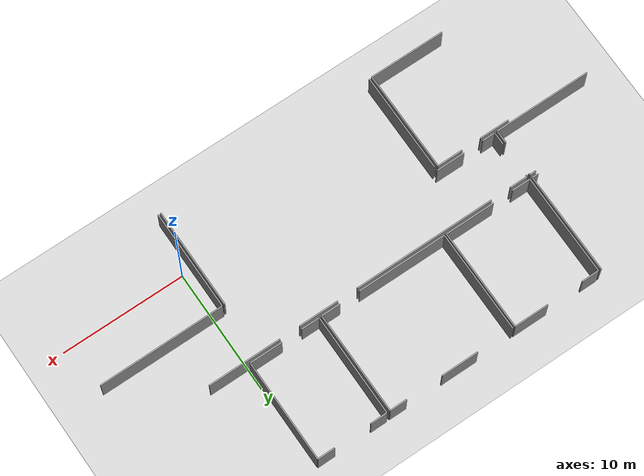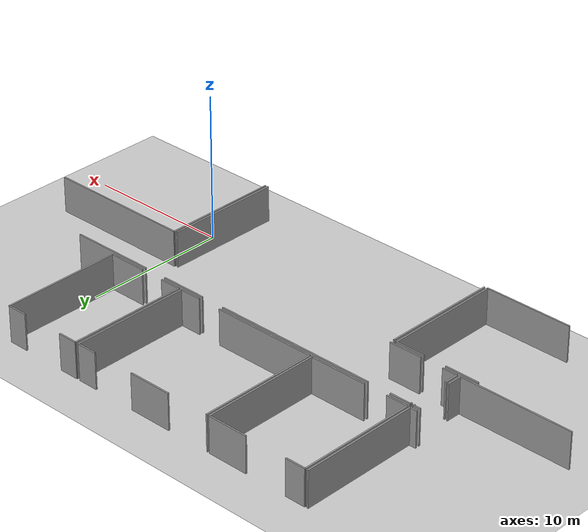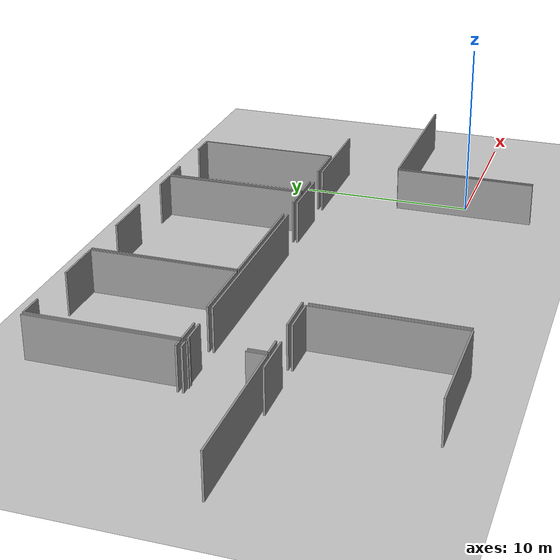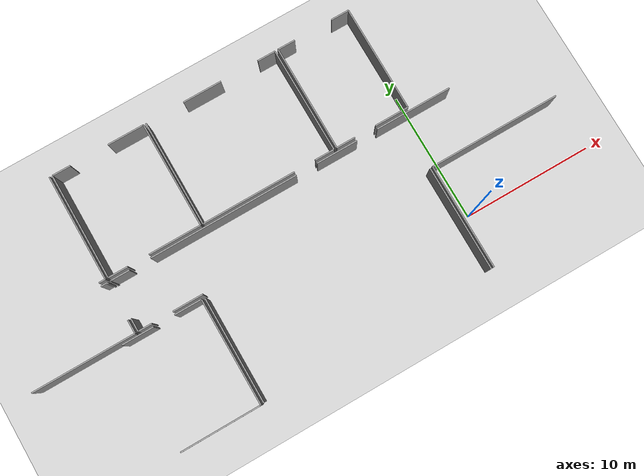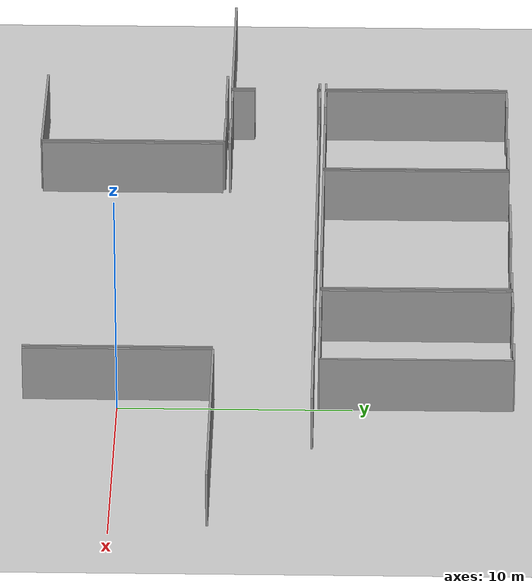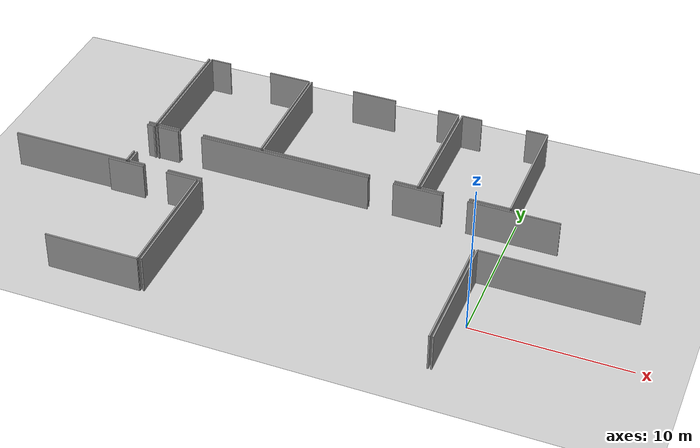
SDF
<sdf version="1.6">
 <world name="default">
  <model name="ground_plane">
   <static>1</static>
   <link name="link">
    <collision name="collision">
     <geometry><plane><normal>0 0 1</normal><size>100 100</size></plane></geometry>
     <surface><friction><ode><mu>100</mu><mu2>50</mu2></ode></friction></surface>
    </collision>
    <visual name="visual">
     <cast_shadows>0</cast_shadows>
     <geometry><plane><normal>0 0 1</normal><size>100 100</size></plane></geometry>
     <material>
      <script><uri>file://media/materials/scripts/gazebo.material</uri><name>Gazebo/Grey</name></script>
     </material>
    </visual>
   </link>
  </model>
  <model name="50041184">
   <static>1</static>
   <link name="Wall_0">
    <collision name="Wall_0_Collision">
     <geometry><box><size>0.124158155655 0.1 2.5</size></box></geometry>
     <pose>0.0620790778274 0 1.25 0 0 0</pose>
    </collision>
    <visual name="Wall_0_Visual">
     <pose>0.0620790778274 0 1.25 0 0 0</pose>
     <geometry><box><size>0.124158155655 0.1 2.5</size></box></geometry>
     <material>
      <script><uri>file://media/materials/scripts/gazebo.material</uri><name>Gazebo/Grey</name></script>
      <ambient>1 1 1 1</ambient>
     </material>
    </visual>
    <pose>47.5227528072 -8.49251940765 0 0 0 -1.57079632679</pose>
   </link>
   <link name="Wall_1">
    <collision name="Wall_1_Collision">
     <geometry><box><size>1.04633079643 0.1 2.5</size></box></geometry>
     <pose>0.523165398214 0 1.25 0 0 0</pose>
    </collision>
    <visual name="Wall_1_Visual">
     <pose>0.523165398214 0 1.25 0 0 0</pose>
     <geometry><box><size>1.04633079643 0.1 2.5</size></box></geometry>
     <material>
      <script><uri>file://media/materials/scripts/gazebo.material</uri><name>Gazebo/Grey</name></script>
      <ambient>1 1 1 1</ambient>
     </material>
    </visual>
    <pose>47.5227528072 -11.4282631188 0 0 0 -1.57079632679</pose>
   </link>
   <link name="Wall_2">
    <collision name="Wall_2_Collision">
     <geometry><box><size>7.89077129128 0.1 2.5</size></box></geometry>
     <pose>3.94538564564 0 1.25 0 0 0</pose>
    </collision>
    <visual name="Wall_2_Visual">
     <pose>3.94538564564 0 1.25 0 0 0</pose>
     <geometry><box><size>7.89077129128 0.1 2.5</size></box></geometry>
     <material>
      <script><uri>file://media/materials/scripts/gazebo.material</uri><name>Gazebo/Grey</name></script>
      <ambient>1 1 1 1</ambient>
     </material>
    </visual>
    <pose>47.5227528072 -12.4745939152 0 0 0 3.14159265359</pose>
   </link>
   <link name="Wall_14">
    <collision name="Wall_14_Collision">
     <geometry><box><size>0.503983841448 0.1 2.5</size></box></geometry>
     <pose>0.251991920724 0 1.25 0 0 0</pose>
    </collision>
    <visual name="Wall_14_Visual">
     <pose>0.251991920724 0 1.25 0 0 0</pose>
     <geometry><box><size>0.503983841448 0.1 2.5</size></box></geometry>
     <material>
      <script><uri>file://media/materials/scripts/gazebo.material</uri><name>Gazebo/Grey</name></script>
      <ambient>1 1 1 1</ambient>
     </material>
    </visual>
    <pose>47.0190109241 -8.50813439041 0 0 0 0.0309880611951</pose>
   </link>
   <link name="Wall_39">
    <collision name="Wall_39_Collision">
     <geometry><box><size>0.499298595286 0.1 2.5</size></box></geometry>
     <pose>0.249649297643 0 1.25 0 0 0</pose>
    </collision>
    <visual name="Wall_39_Visual">
     <pose>0.249649297643 0 1.25 0 0 0</pose>
     <geometry><box><size>0.499298595286 0.1 2.5</size></box></geometry>
     <material>
      <script><uri>file://media/materials/scripts/gazebo.material</uri><name>Gazebo/Grey</name></script>
      <ambient>1 1 1 1</ambient>
     </material>
    </visual>
    <pose>47.5161513511 -8.2216058042 0 0 0 3.14159265359</pose>
   </link>
   <link name="Wall_44">
    <collision name="Wall_44_Collision">
     <geometry><box><size>8.202944471 0.1 2.5</size></box></geometry>
     <pose>4.1014722355 0 1.25 0 0 0</pose>
    </collision>
    <visual name="Wall_44_Visual">
     <pose>4.1014722355 0 1.25 0 0 0</pose>
     <geometry><box><size>8.202944471 0.1 2.5</size></box></geometry>
     <material>
      <script><uri>file://media/materials/scripts/gazebo.material</uri><name>Gazebo/Grey</name></script>
      <ambient>1 1 1 1</ambient>
     </material>
    </visual>
    <pose>47.5133584273 -0.018661808672 0 0 0 -1.57045584859</pose>
   </link>
   <link name="Wall_58">
    <collision name="Wall_58_Collision">
     <geometry><box><size>2.33361474156 0.1 2.5</size></box></geometry>
     <pose>1.16680737078 0 1.25 0 0 0</pose>
    </collision>
    <visual name="Wall_58_Visual">
     <pose>1.16680737078 0 1.25 0 0 0</pose>
     <geometry><box><size>2.33361474156 0.1 2.5</size></box></geometry>
     <material>
      <script><uri>file://media/materials/scripts/gazebo.material</uri><name>Gazebo/Grey</name></script>
      <ambient>1 1 1 1</ambient>
     </material>
    </visual>
    <pose>52.7582153217 -12.4580902749 0 0 0 3.14159265359</pose>
   </link>
   <link name="Wall_59">
    <collision name="Wall_59_Collision">
     <geometry><box><size>1.060041513 0.1 2.5</size></box></geometry>
     <pose>0.530020756501 0 1.25 0 0 0</pose>
    </collision>
    <visual name="Wall_59_Visual">
     <pose>0.530020756501 0 1.25 0 0 0</pose>
     <geometry><box><size>1.060041513 0.1 2.5</size></box></geometry>
     <material>
      <script><uri>file://media/materials/scripts/gazebo.material</uri><name>Gazebo/Grey</name></script>
      <ambient>1 1 1 1</ambient>
     </material>
    </visual>
    <pose>48.8099098013 -12.4580902749 0 0 0 3.14159265359</pose>
   </link>
   <link name="Wall_60">
    <collision name="Wall_60_Collision">
     <geometry><box><size>1.00608730426 0.1 2.5</size></box></geometry>
     <pose>0.503043652129 0 1.25 0 0 0</pose>
    </collision>
    <visual name="Wall_60_Visual">
     <pose>0.503043652129 0 1.25 0 0 0</pose>
     <geometry><box><size>1.00608730426 0.1 2.5</size></box></geometry>
     <material>
      <script><uri>file://media/materials/scripts/gazebo.material</uri><name>Gazebo/Grey</name></script>
      <ambient>1 1 1 1</ambient>
     </material>
    </visual>
    <pose>47.7498682883 -12.4580902749 0 0 0 1.57079632679</pose>
   </link>
   <link name="Wall_61">
    <collision name="Wall_61_Collision">
     <geometry><box><size>0.12517376429 0.1 2.5</size></box></geometry>
     <pose>0.062586882145 0 1.25 0 0 0</pose>
    </collision>
    <visual name="Wall_61_Visual">
     <pose>0.062586882145 0 1.25 0 0 0</pose>
     <geometry><box><size>0.12517376429 0.1 2.5</size></box></geometry>
     <material>
      <script><uri>file://media/materials/scripts/gazebo.material</uri><name>Gazebo/Grey</name></script>
      <ambient>1 1 1 1</ambient>
     </material>
    </visual>
    <pose>47.7498682883 -8.62226341079 0 0 0 1.57079632679</pose>
   </link>
   <link name="Wall_62">
    <collision name="Wall_62_Collision">
     <geometry><box><size>1.48583543332 0.1 2.5</size></box></geometry>
     <pose>0.742917716658 0 1.25 0 0 0</pose>
    </collision>
    <visual name="Wall_62_Visual">
     <pose>0.742917716658 0 1.25 0 0 0</pose>
     <geometry><box><size>1.48583543332 0.1 2.5</size></box></geometry>
     <material>
      <script><uri>file://media/materials/scripts/gazebo.material</uri><name>Gazebo/Grey</name></script>
      <ambient>1 1 1 1</ambient>
     </material>
    </visual>
    <pose>47.7498682883 -8.4970896465 0 0 0 0.0</pose>
   </link>
   <link name="Wall_63">
    <collision name="Wall_63_Collision">
     <geometry><box><size>11.4763775779 0.1 2.5</size></box></geometry>
     <pose>5.73818878895 0 1.25 0 0 0</pose>
    </collision>
    <visual name="Wall_63_Visual">
     <pose>5.73818878895 0 1.25 0 0 0</pose>
     <geometry><box><size>11.4763775779 0.1 2.5</size></box></geometry>
     <material>
      <script><uri>file://media/materials/scripts/gazebo.material</uri><name>Gazebo/Grey</name></script>
      <ambient>1 1 1 1</ambient>
     </material>
    </visual>
    <pose>50.8761655696 -8.4970896465 0 0 0 0.0</pose>
   </link>
   <link name="Wall_64">
    <collision name="Wall_64_Collision">
     <geometry><box><size>3.21249706426 0.1 2.5</size></box></geometry>
     <pose>1.60624853213 0 1.25 0 0 0</pose>
    </collision>
    <visual name="Wall_64_Visual">
     <pose>1.60624853213 0 1.25 0 0 0</pose>
     <geometry><box><size>3.21249706426 0.1 2.5</size></box></geometry>
     <material>
      <script><uri>file://media/materials/scripts/gazebo.material</uri><name>Gazebo/Grey</name></script>
      <ambient>1 1 1 1</ambient>
     </material>
    </visual>
    <pose>64.0083660761 -8.4970896465 0 0 0 0.0</pose>
   </link>
   <link name="Wall_65">
    <collision name="Wall_65_Collision">
     <geometry><box><size>5.88748325833 0.1 2.5</size></box></geometry>
     <pose>2.94374162916 0 1.25 0 0 0</pose>
    </collision>
    <visual name="Wall_65_Visual">
     <pose>2.94374162916 0 1.25 0 0 0</pose>
     <geometry><box><size>5.88748325833 0.1 2.5</size></box></geometry>
     <material>
      <script><uri>file://media/materials/scripts/gazebo.material</uri><name>Gazebo/Grey</name></script>
      <ambient>1 1 1 1</ambient>
     </material>
    </visual>
    <pose>68.8578973093 -8.4970896465 0 0 0 0.0</pose>
   </link>
   <link name="Wall_75">
    <collision name="Wall_75_Collision">
     <geometry><box><size>4.04136066167 0.1 2.5</size></box></geometry>
     <pose>2.02068033083 0 1.25 0 0 0</pose>
    </collision>
    <visual name="Wall_75_Visual">
     <pose>2.02068033083 0 1.25 0 0 0</pose>
     <geometry><box><size>4.04136066167 0.1 2.5</size></box></geometry>
     <material>
      <script><uri>file://media/materials/scripts/gazebo.material</uri><name>Gazebo/Grey</name></script>
      <ambient>1 1 1 1</ambient>
     </material>
    </visual>
    <pose>54.9351724313 -8.23163493948 0 0 0 3.14159265359</pose>
   </link>
   <link name="Wall_76">
    <collision name="Wall_76_Collision">
     <geometry><box><size>1.51693844777 0.1 2.5</size></box></geometry>
     <pose>0.758469223885 0 1.25 0 0 0</pose>
    </collision>
    <visual name="Wall_76_Visual">
     <pose>0.758469223885 0 1.25 0 0 0</pose>
     <geometry><box><size>1.51693844777 0.1 2.5</size></box></geometry>
     <material>
      <script><uri>file://media/materials/scripts/gazebo.material</uri><name>Gazebo/Grey</name></script>
      <ambient>1 1 1 1</ambient>
     </material>
    </visual>
    <pose>49.2414165201 -8.23163493948 0 0 0 3.14159265359</pose>
   </link>
   <link name="Wall_77">
    <collision name="Wall_77_Collision">
     <geometry><box><size>8.19608863724 0.1 2.5</size></box></geometry>
     <pose>4.09804431862 0 1.25 0 0 0</pose>
    </collision>
    <visual name="Wall_77_Visual">
     <pose>4.09804431862 0 1.25 0 0 0</pose>
     <geometry><box><size>8.19608863724 0.1 2.5</size></box></geometry>
     <material>
      <script><uri>file://media/materials/scripts/gazebo.material</uri><name>Gazebo/Grey</name></script>
      <ambient>1 1 1 1</ambient>
     </material>
    </visual>
    <pose>47.7244780724 -8.23163493948 0 0 0 1.57079632679</pose>
   </link>
   <link name="Wall_78">
    <collision name="Wall_78_Collision">
     <geometry><box><size>1.40661795977 0.1 2.5</size></box></geometry>
     <pose>0.703308979885 0 1.25 0 0 0</pose>
    </collision>
    <visual name="Wall_78_Visual">
     <pose>0.703308979885 0 1.25 0 0 0</pose>
     <geometry><box><size>1.40661795977 0.1 2.5</size></box></geometry>
     <material>
      <script><uri>file://media/materials/scripts/gazebo.material</uri><name>Gazebo/Grey</name></script>
      <ambient>1 1 1 1</ambient>
     </material>
    </visual>
    <pose>47.7244780724 -0.0355463022324 0 0 0 0.0</pose>
   </link>
   <link name="Wall_79">
    <collision name="Wall_79_Collision">
     <geometry><box><size>2.82059908214 0.1 2.5</size></box></geometry>
     <pose>1.41029954107 0 1.25 0 0 0</pose>
    </collision>
    <visual name="Wall_79_Visual">
     <pose>1.41029954107 0 1.25 0 0 0</pose>
     <geometry><box><size>2.82059908214 0.1 2.5</size></box></geometry>
     <material>
      <script><uri>file://media/materials/scripts/gazebo.material</uri><name>Gazebo/Grey</name></script>
      <ambient>1 1 1 1</ambient>
     </material>
    </visual>
    <pose>52.0900717908 -0.0355463022324 0 0 0 0.0</pose>
   </link>
   <link name="Wall_80">
    <collision name="Wall_80_Collision">
     <geometry><box><size>8.1961252599 0.1 2.5</size></box></geometry>
     <pose>4.09806262995 0 1.25 0 0 0</pose>
    </collision>
    <visual name="Wall_80_Visual">
     <pose>4.09806262995 0 1.25 0 0 0</pose>
     <geometry><box><size>8.1961252599 0.1 2.5</size></box></geometry>
     <material>
      <script><uri>file://media/materials/scripts/gazebo.material</uri><name>Gazebo/Grey</name></script>
      <ambient>1 1 1 1</ambient>
     </material>
    </visual>
    <pose>54.910670873 -0.0355463022324 0 0 0 -1.56780691484</pose>
   </link>
   <link name="Wall_81">
    <collision name="Wall_81_Collision">
     <geometry><box><size>1.51389162186 0.1 2.5</size></box></geometry>
     <pose>0.756945810932 0 1.25 0 0 0</pose>
    </collision>
    <visual name="Wall_81_Visual">
     <pose>0.756945810932 0 1.25 0 0 0</pose>
     <geometry><box><size>1.51389162186 0.1 2.5</size></box></geometry>
     <material>
      <script><uri>file://media/materials/scripts/gazebo.material</uri><name>Gazebo/Grey</name></script>
      <ambient>1 1 1 1</ambient>
     </material>
    </visual>
    <pose>65.5263201325 -8.24039456395 0 0 0 3.14159265359</pose>
   </link>
   <link name="Wall_82">
    <collision name="Wall_82_Collision">
     <geometry><box><size>7.24751017196 0.1 2.5</size></box></geometry>
     <pose>3.62375508598 0 1.25 0 0 0</pose>
    </collision>
    <visual name="Wall_82_Visual">
     <pose>3.62375508598 0 1.25 0 0 0</pose>
     <geometry><box><size>7.24751017196 0.1 2.5</size></box></geometry>
     <material>
      <script><uri>file://media/materials/scripts/gazebo.material</uri><name>Gazebo/Grey</name></script>
      <ambient>1 1 1 1</ambient>
     </material>
    </visual>
    <pose>62.3554630223 -8.24039456395 0 0 0 3.14159265359</pose>
   </link>
   <link name="Wall_83">
    <collision name="Wall_83_Collision">
     <geometry><box><size>8.23315835243 0.1 2.5</size></box></geometry>
     <pose>4.11657917621 0 1.25 0 0 0</pose>
    </collision>
    <visual name="Wall_83_Visual">
     <pose>4.11657917621 0 1.25 0 0 0</pose>
     <geometry><box><size>8.23315835243 0.1 2.5</size></box></geometry>
     <material>
      <script><uri>file://media/materials/scripts/gazebo.material</uri><name>Gazebo/Grey</name></script>
      <ambient>1 1 1 1</ambient>
     </material>
    </visual>
    <pose>55.1079528504 -8.24039456395 0 0 0 1.57079632679</pose>
   </link>
   <link name="Wall_84">
    <collision name="Wall_84_Collision">
     <geometry><box><size>3.0131838696 0.1 2.5</size></box></geometry>
     <pose>1.5065919348 0 1.25 0 0 0</pose>
    </collision>
    <visual name="Wall_84_Visual">
     <pose>1.5065919348 0 1.25 0 0 0</pose>
     <geometry><box><size>3.0131838696 0.1 2.5</size></box></geometry>
     <material>
      <script><uri>file://media/materials/scripts/gazebo.material</uri><name>Gazebo/Grey</name></script>
      <ambient>1 1 1 1</ambient>
     </material>
    </visual>
    <pose>58.1005706451 -0.00723621152589 0 0 0 0.0</pose>
   </link>
   <link name="Wall_85">
    <collision name="Wall_85_Collision">
     <geometry><box><size>1.39417675399 0.1 2.5</size></box></geometry>
     <pose>0.697088376994 0 1.25 0 0 0</pose>
    </collision>
    <visual name="Wall_85_Visual">
     <pose>0.697088376994 0 1.25 0 0 0</pose>
     <geometry><box><size>1.39417675399 0.1 2.5</size></box></geometry>
     <material>
      <script><uri>file://media/materials/scripts/gazebo.material</uri><name>Gazebo/Grey</name></script>
      <ambient>1 1 1 1</ambient>
     </material>
    </visual>
    <pose>64.0939311036 -0.00723621152589 0 0 0 0.0</pose>
   </link>
   <link name="Wall_86">
    <collision name="Wall_86_Collision">
     <geometry><box><size>8.23324702861 0.1 2.5</size></box></geometry>
     <pose>4.11662351431 0 1.25 0 0 0</pose>
    </collision>
    <visual name="Wall_86_Visual">
     <pose>4.11662351431 0 1.25 0 0 0</pose>
     <geometry><box><size>8.23324702861 0.1 2.5</size></box></geometry>
     <material>
      <script><uri>file://media/materials/scripts/gazebo.material</uri><name>Gazebo/Grey</name></script>
      <ambient>1 1 1 1</ambient>
     </material>
    </visual>
    <pose>65.4881078576 -0.00723621152589 0 0 0 -1.56615509449</pose>
   </link>
   <link name="Wall_93">
    <collision name="Wall_93_Collision">
     <geometry><box><size>2.63029941412 0.1 2.5</size></box></geometry>
     <pose>1.31514970706 0 1.25 0 0 0</pose>
    </collision>
    <visual name="Wall_93_Visual">
     <pose>1.31514970706 0 1.25 0 0 0</pose>
     <geometry><box><size>2.63029941412 0.1 2.5</size></box></geometry>
     <material>
      <script><uri>file://media/materials/scripts/gazebo.material</uri><name>Gazebo/Grey</name></script>
      <ambient>1 1 1 1</ambient>
     </material>
    </visual>
    <pose>71.513206086 -8.23163493948 0 0 0 3.14159265359</pose>
   </link>
   <link name="Wall_94">
    <collision name="Wall_94_Collision">
     <geometry><box><size>1.4723786189 0.1 2.5</size></box></geometry>
     <pose>0.73618930945 0 1.25 0 0 0</pose>
    </collision>
    <visual name="Wall_94_Visual">
     <pose>0.73618930945 0 1.25 0 0 0</pose>
     <geometry><box><size>1.4723786189 0.1 2.5</size></box></geometry>
     <material>
      <script><uri>file://media/materials/scripts/gazebo.material</uri><name>Gazebo/Grey</name></script>
      <ambient>1 1 1 1</ambient>
     </material>
    </visual>
    <pose>67.2208631404 -8.23163493948 0 0 0 3.14159265359</pose>
   </link>
   <link name="Wall_95">
    <collision name="Wall_95_Collision">
     <geometry><box><size>8.23163493948 0.1 2.5</size></box></geometry>
     <pose>4.11581746974 0 1.25 0 0 0</pose>
    </collision>
    <visual name="Wall_95_Visual">
     <pose>4.11581746974 0 1.25 0 0 0</pose>
     <geometry><box><size>8.23163493948 0.1 2.5</size></box></geometry>
     <material>
      <script><uri>file://media/materials/scripts/gazebo.material</uri><name>Gazebo/Grey</name></script>
      <ambient>1 1 1 1</ambient>
     </material>
    </visual>
    <pose>65.7484845215 -8.23163493948 0 0 0 1.57079632679</pose>
   </link>
   <link name="Wall_96">
    <collision name="Wall_96_Collision">
     <geometry><box><size>1.34885521864 0.1 2.5</size></box></geometry>
     <pose>0.674427609321 0 1.25 0 0 0</pose>
    </collision>
    <visual name="Wall_96_Visual">
     <pose>0.674427609321 0 1.25 0 0 0</pose>
     <geometry><box><size>1.34885521864 0.1 2.5</size></box></geometry>
     <material>
      <script><uri>file://media/materials/scripts/gazebo.material</uri><name>Gazebo/Grey</name></script>
      <ambient>1 1 1 1</ambient>
     </material>
    </visual>
    <pose>65.7484845215 -0.0 0 0 0 0.0</pose>
   </link>
   <link name="Wall_97">
    <collision name="Wall_97_Collision">
     <geometry><box><size>1.3996356504 0.1 2.5</size></box></geometry>
     <pose>0.699817825201 0 1.25 0 0 0</pose>
    </collision>
    <visual name="Wall_97_Visual">
     <pose>0.699817825201 0 1.25 0 0 0</pose>
     <geometry><box><size>1.3996356504 0.1 2.5</size></box></geometry>
     <material>
      <script><uri>file://media/materials/scripts/gazebo.material</uri><name>Gazebo/Grey</name></script>
      <ambient>1 1 1 1</ambient>
     </material>
    </visual>
    <pose>70.1037952025 -0.0 0 0 0 0.0</pose>
   </link>
   <link name="Wall_98">
    <collision name="Wall_98_Collision">
     <geometry><box><size>8.23164074362 0.1 2.5</size></box></geometry>
     <pose>4.11582037181 0 1.25 0 0 0</pose>
    </collision>
    <visual name="Wall_98_Visual">
     <pose>4.11582037181 0 1.25 0 0 0</pose>
     <geometry><box><size>8.23164074362 0.1 2.5</size></box></geometry>
     <material>
      <script><uri>file://media/materials/scripts/gazebo.material</uri><name>Gazebo/Grey</name></script>
      <ambient>1 1 1 1</ambient>
     </material>
    </visual>
    <pose>71.5034308529 -0.0 0 0 0 -1.56960880711</pose>
   </link>
   <link name="Wall_234">
    <collision name="Wall_234_Collision">
     <geometry><box><size>8.10811153922 0.1 2.5</size></box></geometry>
     <pose>4.05405576961 0 1.25 0 0 0</pose>
    </collision>
    <visual name="Wall_234_Visual">
     <pose>4.05405576961 0 1.25 0 0 0</pose>
     <geometry><box><size>8.10811153922 0.1 2.5</size></box></geometry>
     <material>
      <script><uri>file://media/materials/scripts/gazebo.material</uri><name>Gazebo/Grey</name></script>
      <ambient>1 1 1 1</ambient>
     </material>
    </visual>
    <pose>70.8231000184 -20.8451133356 0 0 0 1.57079632679</pose>
   </link>
   <link name="Wall_235">
    <collision name="Wall_235_Collision">
     <geometry><box><size>10.0942611765 0.1 2.5</size></box></geometry>
     <pose>5.04713058823 0 1.25 0 0 0</pose>
    </collision>
    <visual name="Wall_235_Visual">
     <pose>5.04713058823 0 1.25 0 0 0</pose>
     <geometry><box><size>10.0942611765 0.1 2.5</size></box></geometry>
     <material>
      <script><uri>file://media/materials/scripts/gazebo.material</uri><name>Gazebo/Grey</name></script>
      <ambient>1 1 1 1</ambient>
     </material>
    </visual>
    <pose>70.8231000184 -12.7370017964 0 0 0 0.0</pose>
   </link>
   <link name="Wall_238">
    <collision name="Wall_238_Collision">
     <geometry><box><size>8.09224265429 0.1 2.5</size></box></geometry>
     <pose>4.04612132715 0 1.25 0 0 0</pose>
    </collision>
    <visual name="Wall_238_Visual">
     <pose>4.04612132715 0 1.25 0 0 0</pose>
     <geometry><box><size>8.09224265429 0.1 2.5</size></box></geometry>
     <material>
      <script><uri>file://media/materials/scripts/gazebo.material</uri><name>Gazebo/Grey</name></script>
      <ambient>1 1 1 1</ambient>
     </material>
    </visual>
    <pose>52.7472975289 -20.8547616176 0 0 0 1.57079632679</pose>
   </link>
   <link name="Wall_239">
    <collision name="Wall_239_Collision">
     <geometry><box><size>8.09224290922 0.1 2.5</size></box></geometry>
     <pose>4.04612145461 0 1.25 0 0 0</pose>
    </collision>
    <visual name="Wall_239_Visual">
     <pose>4.04612145461 0 1.25 0 0 0</pose>
     <geometry><box><size>8.09224290922 0.1 2.5</size></box></geometry>
     <material>
      <script><uri>file://media/materials/scripts/gazebo.material</uri><name>Gazebo/Grey</name></script>
      <ambient>1 1 1 1</ambient>
     </material>
    </visual>
    <pose>70.6128690309 -12.7625189633 0 0 0 -1.57104733474</pose>
   </link>
   <link name="Wall_240">
    <collision name="Wall_240_Collision">
     <geometry><box><size>6.13516481424 0.1 2.5</size></box></geometry>
     <pose>3.06758240712 0 1.25 0 0 0</pose>
    </collision>
    <visual name="Wall_240_Visual">
     <pose>3.06758240712 0 1.25 0 0 0</pose>
     <geometry><box><size>6.13516481424 0.1 2.5</size></box></geometry>
     <material>
      <script><uri>file://media/materials/scripts/gazebo.material</uri><name>Gazebo/Grey</name></script>
      <ambient>1 1 1 1</ambient>
     </material>
    </visual>
    <pose>52.5161196133 -20.8843412191 0 0 0 3.14159265359</pose>
   </link>
   <link name="Wall_244">
    <collision name="Wall_244_Collision">
     <geometry><box><size>2.43314438781 0.1 2.5</size></box></geometry>
     <pose>1.21657219391 0 1.25 0 0 0</pose>
    </collision>
    <visual name="Wall_244_Visual">
     <pose>1.21657219391 0 1.25 0 0 0</pose>
     <geometry><box><size>2.43314438781 0.1 2.5</size></box></geometry>
     <material>
      <script><uri>file://media/materials/scripts/gazebo.material</uri><name>Gazebo/Grey</name></script>
      <ambient>1 1 1 1</ambient>
     </material>
    </visual>
    <pose>46.3809547991 -12.7053909776 0 0 0 0.0</pose>
   </link>
   <link name="Wall_245">
    <collision name="Wall_245_Collision">
     <geometry><box><size>2.08567928349 0.1 2.5</size></box></geometry>
     <pose>1.04283964174 0 1.25 0 0 0</pose>
    </collision>
    <visual name="Wall_245_Visual">
     <pose>1.04283964174 0 1.25 0 0 0</pose>
     <geometry><box><size>2.08567928349 0.1 2.5</size></box></geometry>
     <material>
      <script><uri>file://media/materials/scripts/gazebo.material</uri><name>Gazebo/Grey</name></script>
      <ambient>1 1 1 1</ambient>
     </material>
    </visual>
    <pose>50.4167296132 -12.7053909776 0 0 0 0.0</pose>
   </link>
   <link name="Wall_246">
    <collision name="Wall_246_Collision">
     <geometry><box><size>8.17896173344 0.1 2.5</size></box></geometry>
     <pose>4.08948086672 0 1.25 0 0 0</pose>
    </collision>
    <visual name="Wall_246_Visual">
     <pose>4.08948086672 0 1.25 0 0 0</pose>
     <geometry><box><size>8.17896173344 0.1 2.5</size></box></geometry>
     <material>
      <script><uri>file://media/materials/scripts/gazebo.material</uri><name>Gazebo/Grey</name></script>
      <ambient>1 1 1 1</ambient>
     </material>
    </visual>
    <pose>52.5024088967 -12.7053909776 0 0 0 -1.56911998652</pose>
   </link>
   <pose>-71.6 16.80775925 0 0 0 0</pose>
  </model>
 </world>
</sdf>
